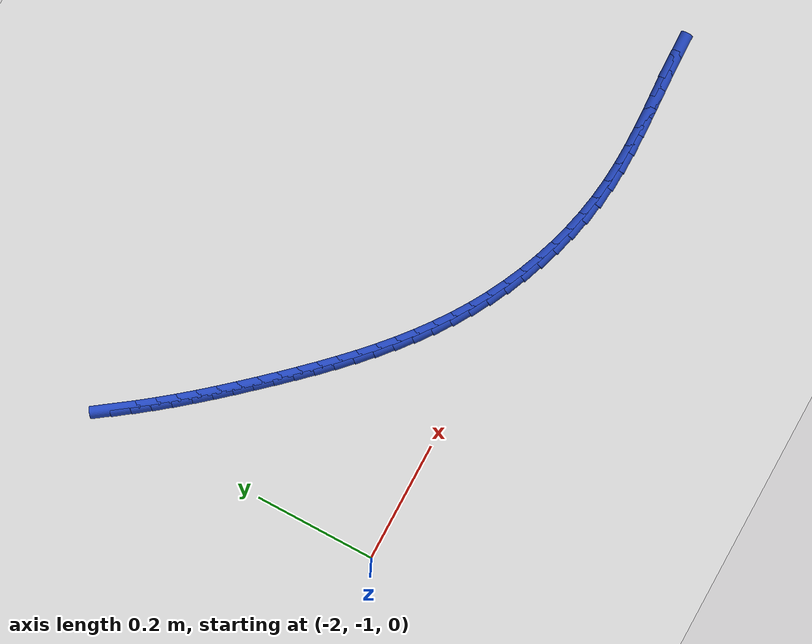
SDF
<sdf version="1.6">
 <world name="default">
  <model name="ground_plane">
   <static>1</static>
   <link name="link">
    <collision name="collision">
     <geometry><plane><normal>0 0 1</normal><size>100 100</size></plane></geometry>
     <surface><friction><ode><mu>100</mu><mu2>50</mu2></ode></friction></surface>
    </collision>
    <visual name="visual">
     <cast_shadows>0</cast_shadows>
     <geometry><plane><normal>0 0 1</normal><size>100 100</size></plane></geometry>
     <material>
      <script><uri>file://media/materials/scripts/gazebo.material</uri><name>Gazebo/WhiteGlow</name></script>
     </material>
    </visual>
   </link>
  </model>
  <model name="line">
   <link name="link_123">
    <pose>-1.9822790960547438 -0.53648132921445 0.01 0 1.57 -0.9532077410449262</pose>
    <collision name="collision">
     <geometry><cylinder><radius>0.01</radius><length>0.08</length></cylinder></geometry>
    </collision>
    <visual name="visual">
     <material>
      <script><name>Gazebo/Blue</name><uri>file://media/materials/scripts/gazebo.material</uri></script>
     </material>
     <geometry><cylinder><radius>0.01</radius><length>0.08</length></cylinder></geometry>
    </visual>
   </link>
   <link name="link_124">
    <pose>-1.963588134399126 -0.5627964413083407 0.01 0 1.57 -0.931108365339937</pose>
    <collision name="collision">
     <geometry><cylinder><radius>0.01</radius><length>0.08</length></cylinder></geometry>
    </collision>
    <visual name="visual">
     <material>
      <script><name>Gazebo/Blue</name><uri>file://media/materials/scripts/gazebo.material</uri></script>
     </material>
     <geometry><cylinder><radius>0.01</radius><length>0.08</length></cylinder></geometry>
    </visual>
   </link>
   <link name="link_125">
    <pose>-1.944331002395733 -0.5886776336544366 0.01 0 1.57 -0.9110941151925875</pose>
    <collision name="collision">
     <geometry><cylinder><radius>0.01</radius><length>0.08</length></cylinder></geometry>
    </collision>
    <visual name="visual">
     <material>
      <script><name>Gazebo/Blue</name><uri>file://media/materials/scripts/gazebo.material</uri></script>
     </material>
     <geometry><cylinder><radius>0.01</radius><length>0.08</length></cylinder></geometry>
    </visual>
   </link>
   <link name="link_126">
    <pose>-1.9245586226096025 -0.614169729379811 0.01 0 1.57 -0.8931900010010159</pose>
    <collision name="collision">
     <geometry><cylinder><radius>0.01</radius><length>0.08</length></cylinder></geometry>
    </collision>
    <visual name="visual">
     <material>
      <script><name>Gazebo/Blue</name><uri>file://media/materials/scripts/gazebo.material</uri></script>
     </material>
     <geometry><cylinder><radius>0.01</radius><length>0.08</length></cylinder></geometry>
    </visual>
   </link>
   <link name="link_127">
    <pose>-1.9043219176057715 -0.6393175516115395 0.01 0 1.57 -0.8774102426342933</pose>
    <collision name="collision">
     <geometry><cylinder><radius>0.01</radius><length>0.08</length></cylinder></geometry>
    </collision>
    <visual name="visual">
     <material>
      <script><name>Gazebo/Blue</name><uri>file://media/materials/scripts/gazebo.material</uri></script>
     </material>
     <geometry><cylinder><radius>0.01</radius><length>0.08</length></cylinder></geometry>
    </visual>
   </link>
   <link name="link_128">
    <pose>-1.8836718099492777 -0.6641659234766972 0.01 0 1.57 -0.8637606068564999</pose>
    <collision name="collision">
     <geometry><cylinder><radius>0.01</radius><length>0.08</length></cylinder></geometry>
    </collision>
    <visual name="visual">
     <material>
      <script><name>Gazebo/Blue</name><uri>file://media/materials/scripts/gazebo.material</uri></script>
     </material>
     <geometry><cylinder><radius>0.01</radius><length>0.08</length></cylinder></geometry>
    </visual>
   </link>
   <link name="link_129">
    <pose>-1.8626592222051594 -0.6887596681023594 0.01 0 1.57 -0.8522405366996783</pose>
    <collision name="collision">
     <geometry><cylinder><radius>0.01</radius><length>0.08</length></cylinder></geometry>
    </collision>
    <visual name="visual">
     <material>
      <script><name>Gazebo/Blue</name><uri>file://media/materials/scripts/gazebo.material</uri></script>
     </material>
     <geometry><cylinder><radius>0.01</radius><length>0.08</length></cylinder></geometry>
    </visual>
   </link>
   <link name="link_130">
    <pose>-1.8413350769384522 -0.7131436086156004 0.01 0 1.57 -0.8428262005221856</pose>
    <collision name="collision">
     <geometry><cylinder><radius>0.01</radius><length>0.08</length></cylinder></geometry>
    </collision>
    <visual name="visual">
     <material>
      <script><name>Gazebo/Blue</name><uri>file://media/materials/scripts/gazebo.material</uri></script>
     </material>
     <geometry><cylinder><radius>0.01</radius><length>0.08</length></cylinder></geometry>
    </visual>
   </link>
   <link name="link_131">
    <pose>-1.8197499140770634 -0.7373620797741635 0.01 0 1.57 -0.8336240853418438</pose>
    <collision name="collision">
     <geometry><cylinder><radius>0.01</radius><length>0.08</length></cylinder></geometry>
    </collision>
    <visual name="visual">
     <material>
      <script><name>Gazebo/Blue</name><uri>file://media/materials/scripts/gazebo.material</uri></script>
     </material>
     <geometry><cylinder><radius>0.01</radius><length>0.08</length></cylinder></geometry>
    </visual>
   </link>
   <link name="link_132">
    <pose>-1.7979159403887646 -0.7614104907656959 0.01 0 1.57 -0.8211518562409518</pose>
    <collision name="collision">
     <geometry><cylinder><radius>0.01</radius><length>0.08</length></cylinder></geometry>
    </collision>
    <visual name="visual">
     <material>
      <script><name>Gazebo/Blue</name><uri>file://media/materials/scripts/gazebo.material</uri></script>
     </material>
     <geometry><cylinder><radius>0.01</radius><length>0.08</length></cylinder></geometry>
    </visual>
   </link>
   <link name="link_133">
    <pose>-1.7757748546525967 -0.78519425967006 0.01 0 1.57 -0.8050085236706643</pose>
    <collision name="collision">
     <geometry><cylinder><radius>0.01</radius><length>0.08</length></cylinder></geometry>
    </collision>
    <visual name="visual">
     <material>
      <script><name>Gazebo/Blue</name><uri>file://media/materials/scripts/gazebo.material</uri></script>
     </material>
     <geometry><cylinder><radius>0.01</radius><length>0.08</length></cylinder></geometry>
    </visual>
   </link>
   <link name="link_134">
    <pose>-1.753260778893197 -0.8086091341661591 0.01 0 1.57 -0.7851537779239728</pose>
    <collision name="collision">
     <geometry><cylinder><radius>0.01</radius><length>0.08</length></cylinder></geometry>
    </collision>
    <visual name="visual">
     <material>
      <script><name>Gazebo/Blue</name><uri>file://media/materials/scripts/gazebo.material</uri></script>
     </material>
     <geometry><cylinder><radius>0.01</radius><length>0.08</length></cylinder></geometry>
    </visual>
   </link>
   <link name="link_135">
    <pose>-1.7303078351352053 -0.8315508619328971 0.01 0 1.57 -0.76154165025978</pose>
    <collision name="collision">
     <geometry><cylinder><radius>0.01</radius><length>0.08</length></cylinder></geometry>
    </collision>
    <visual name="visual">
     <material>
      <script><name>Gazebo/Blue</name><uri>file://media/materials/scripts/gazebo.material</uri></script>
     </material>
     <geometry><cylinder><radius>0.01</radius><length>0.08</length></cylinder></geometry>
    </visual>
   </link>
   <link name="link_136">
    <pose>-1.7068501454032585 -0.8539151906491772 0.01 0 1.57 -0.7341286392589328</pose>
    <collision name="collision">
     <geometry><cylinder><radius>0.01</radius><length>0.08</length></cylinder></geometry>
    </collision>
    <visual name="visual">
     <material>
      <script><name>Gazebo/Blue</name><uri>file://media/materials/scripts/gazebo.material</uri></script>
     </material>
     <geometry><cylinder><radius>0.01</radius><length>0.08</length></cylinder></geometry>
    </visual>
   </link>
   <link name="link_137">
    <pose>-1.682821831721996 -0.8755978679939027 0.01 0 1.57 -0.70288378220402</pose>
    <collision name="collision">
     <geometry><cylinder><radius>0.01</radius><length>0.08</length></cylinder></geometry>
    </collision>
    <visual name="visual">
     <material>
      <script><name>Gazebo/Blue</name><uri>file://media/materials/scripts/gazebo.material</uri></script>
     </material>
     <geometry><cylinder><radius>0.01</radius><length>0.08</length></cylinder></geometry>
    </visual>
   </link>
   <link name="link_138">
    <pose>-1.6581570161160553 -0.8964946416459776 0.01 0 1.57 -0.6678007227943621</pose>
    <collision name="collision">
     <geometry><cylinder><radius>0.01</radius><length>0.08</length></cylinder></geometry>
    </collision>
    <visual name="visual">
     <material>
      <script><name>Gazebo/Blue</name><uri>file://media/materials/scripts/gazebo.material</uri></script>
     </material>
     <geometry><cylinder><radius>0.01</radius><length>0.08</length></cylinder></geometry>
    </visual>
   </link>
   <link name="link_139">
    <pose>-1.6327898206100762 -0.9165012592843043 0.01 0 1.57 -0.628911565554183</pose>
    <collision name="collision">
     <geometry><cylinder><radius>0.01</radius><length>0.08</length></cylinder></geometry>
    </collision>
    <visual name="visual">
     <material>
      <script><name>Gazebo/Blue</name><uri>file://media/materials/scripts/gazebo.material</uri></script>
     </material>
     <geometry><cylinder><radius>0.01</radius><length>0.08</length></cylinder></geometry>
    </visual>
   </link>
   <link name="link_140">
    <pose>-1.606654367228696 -0.9355134685877864 0.01 0 1.57 -0.5863019065915528</pose>
    <collision name="collision">
     <geometry><cylinder><radius>0.01</radius><length>0.08</length></cylinder></geometry>
    </collision>
    <visual name="visual">
     <material>
      <script><name>Gazebo/Blue</name><uri>file://media/materials/scripts/gazebo.material</uri></script>
     </material>
     <geometry><cylinder><radius>0.01</radius><length>0.08</length></cylinder></geometry>
    </visual>
   </link>
   <link name="link_141">
    <pose>-1.5796847779965544 -0.9534270172353279 0.01 0 1.57 -0.5402432996426033</pose>
    <collision name="collision">
     <geometry><cylinder><radius>0.01</radius><length>0.08</length></cylinder></geometry>
    </collision>
    <visual name="visual">
     <material>
      <script><name>Gazebo/Blue</name><uri>file://media/materials/scripts/gazebo.material</uri></script>
     </material>
     <geometry><cylinder><radius>0.01</radius><length>0.08</length></cylinder></geometry>
    </visual>
   </link>
   <link name="link_142">
    <pose>-1.5518209003895933 -0.9701386674047504 0.01 0 1.57 -0.4926747962795598</pose>
    <collision name="collision">
     <geometry><cylinder><radius>0.01</radius><length>0.08</length></cylinder></geometry>
    </collision>
    <visual name="visual">
     <material>
      <script><name>Gazebo/Blue</name><uri>file://media/materials/scripts/gazebo.material</uri></script>
     </material>
     <geometry><cylinder><radius>0.01</radius><length>0.08</length></cylinder></geometry>
    </visual>
   </link>
   <link name="link_143">
    <pose>-1.5230922024019606 -0.9855610612305821 0.01 0 1.57 -0.44480871104406705</pose>
    <collision name="collision">
     <geometry><cylinder><radius>0.01</radius><length>0.08</length></cylinder></geometry>
    </collision>
    <visual name="visual">
     <material>
      <script><name>Gazebo/Blue</name><uri>file://media/materials/scripts/gazebo.material</uri></script>
     </material>
     <geometry><cylinder><radius>0.01</radius><length>0.08</length></cylinder></geometry>
    </visual>
   </link>
   <link name="link_144">
    <pose>-1.493599220242548 -0.999619433501308 0.01 0 1.57 -0.39635666066986397</pose>
    <collision name="collision">
     <geometry><cylinder><radius>0.01</radius><length>0.08</length></cylinder></geometry>
    </collision>
    <visual name="visual">
     <material>
      <script><name>Gazebo/Blue</name><uri>file://media/materials/scripts/gazebo.material</uri></script>
     </material>
     <geometry><cylinder><radius>0.01</radius><length>0.08</length></cylinder></geometry>
    </visual>
   </link>
   <link name="link_145">
    <pose>-1.463444442423597 -1.0122393649361598 0.01 0 1.57 -0.3469959985176312</pose>
    <collision name="collision">
     <geometry><cylinder><radius>0.01</radius><length>0.08</length></cylinder></geometry>
    </collision>
    <visual name="visual">
     <material>
      <script><name>Gazebo/Blue</name><uri>file://media/materials/scripts/gazebo.material</uri></script>
     </material>
     <geometry><cylinder><radius>0.01</radius><length>0.08</length></cylinder></geometry>
    </visual>
   </link>
   <link name="link_146">
    <pose>-1.4327303574573498 -1.0233464362543674 0.01 0 1.57 -0.2964093394911552</pose>
    <collision name="collision">
     <geometry><cylinder><radius>0.01</radius><length>0.08</length></cylinder></geometry>
    </collision>
    <visual name="visual">
     <material>
      <script><name>Gazebo/Blue</name><uri>file://media/materials/scripts/gazebo.material</uri></script>
     </material>
     <geometry><cylinder><radius>0.01</radius><length>0.08</length></cylinder></geometry>
    </visual>
   </link>
   <link name="link_147">
    <pose>-1.4015594538560476 -1.0328662281751617 0.01 0 1.57 -0.24428546058516512</pose>
    <collision name="collision">
     <geometry><cylinder><radius>0.01</radius><length>0.08</length></cylinder></geometry>
    </collision>
    <visual name="visual">
     <material>
      <script><name>Gazebo/Blue</name><uri>file://media/materials/scripts/gazebo.material</uri></script>
     </material>
     <geometry><cylinder><radius>0.01</radius><length>0.08</length></cylinder></geometry>
    </visual>
   </link>
   <link name="link_148">
    <pose>-1.3700342201319324 -1.0407243214177746 0.01 0 1.57 -0.19032206017987388</pose>
    <collision name="collision">
     <geometry><cylinder><radius>0.01</radius><length>0.08</length></cylinder></geometry>
    </collision>
    <visual name="visual">
     <material>
      <script><name>Gazebo/Blue</name><uri>file://media/materials/scripts/gazebo.material</uri></script>
     </material>
     <geometry><cylinder><radius>0.01</radius><length>0.08</length></cylinder></geometry>
    </visual>
   </link>
   <link name="link_149">
    <pose>-1.338257144797245 -1.046846296701436 0.01 0 1.57 -0.1342308832272214</pose>
    <collision name="collision">
     <geometry><cylinder><radius>0.01</radius><length>0.08</length></cylinder></geometry>
    </collision>
    <visual name="visual">
     <material>
      <script><name>Gazebo/Blue</name><uri>file://media/materials/scripts/gazebo.material</uri></script>
     </material>
     <geometry><cylinder><radius>0.01</radius><length>0.08</length></cylinder></geometry>
    </visual>
   </link>
   <link name="link_150">
    <pose>-1.3063307163144418 -1.051157734950213 0.01 0 1.57 -0.07806093634948591</pose>
    <collision name="collision">
     <geometry><cylinder><radius>0.01</radius><length>0.08</length></cylinder></geometry>
    </collision>
    <visual name="visual">
     <material>
      <script><name>Gazebo/Blue</name><uri>file://media/materials/scripts/gazebo.material</uri></script>
     </material>
     <geometry><cylinder><radius>0.01</radius><length>0.08</length></cylinder></geometry>
    </visual>
   </link>
   <link name="link_151">
    <pose>-1.274338973544772 -1.0536601251920694 0.01 0 1.57 -0.030756806655642507</pose>
    <collision name="collision">
     <geometry><cylinder><radius>0.01</radius><length>0.08</length></cylinder></geometry>
    </collision>
    <visual name="visual">
     <material>
      <script><name>Gazebo/Blue</name><uri>file://media/materials/scripts/gazebo.material</uri></script>
     </material>
     <geometry><cylinder><radius>0.01</radius><length>0.08</length></cylinder></geometry>
    </visual>
   </link>
   <link name="link_152">
    <pose>-1.2422952167612091 -1.0546459997164963 0.01 0 1.57 0.005245090932125747</pose>
    <collision name="collision">
     <geometry><cylinder><radius>0.01</radius><length>0.08</length></cylinder></geometry>
    </collision>
    <visual name="visual">
     <material>
      <script><name>Gazebo/Blue</name><uri>file://media/materials/scripts/gazebo.material</uri></script>
     </material>
     <geometry><cylinder><radius>0.01</radius><length>0.08</length></cylinder></geometry>
    </visual>
   </link>
   <link name="link_153">
    <pose>-1.2101957950814395 -1.054477633786944 0.01 0 1.57 0.02985334281060876</pose>
    <collision name="collision">
     <geometry><cylinder><radius>0.01</radius><length>0.08</length></cylinder></geometry>
    </collision>
    <visual name="visual">
     <material>
      <script><name>Gazebo/Blue</name><uri>file://media/materials/scripts/gazebo.material</uri></script>
     </material>
     <geometry><cylinder><radius>0.01</radius><length>0.08</length></cylinder></geometry>
    </visual>
   </link>
   <link name="link_154">
    <pose>-1.178037057623151 -1.0535173026668616 0.01 0 1.57 0.04311254700953442</pose>
    <collision name="collision">
     <geometry><cylinder><radius>0.01</radius><length>0.08</length></cylinder></geometry>
    </collision>
    <visual name="visual">
     <material>
      <script><name>Gazebo/Blue</name><uri>file://media/materials/scripts/gazebo.material</uri></script>
     </material>
     <geometry><cylinder><radius>0.01</radius><length>0.08</length></cylinder></geometry>
    </visual>
   </link>
   <link name="link_155">
    <pose>-1.1458153535040319 -1.0521272816196998 0.01 0 1.57 0.045107550486994705</pose>
    <collision name="collision">
     <geometry><cylinder><radius>0.01</radius><length>0.08</length></cylinder></geometry>
    </collision>
    <visual name="visual">
     <material>
      <script><name>Gazebo/Blue</name><uri>file://media/materials/scripts/gazebo.material</uri></script>
     </material>
     <geometry><cylinder><radius>0.01</radius><length>0.08</length></cylinder></geometry>
    </visual>
   </link>
   <link name="link_156">
    <pose>-1.1135270318417692 -1.050669845908908 0.01 0 1.57 0.035912419949860684</pose>
    <collision name="collision">
     <geometry><cylinder><radius>0.01</radius><length>0.08</length></cylinder></geometry>
    </collision>
    <visual name="visual">
     <material>
      <script><name>Gazebo/Blue</name><uri>file://media/materials/scripts/gazebo.material</uri></script>
     </material>
     <geometry><cylinder><radius>0.01</radius><length>0.08</length></cylinder></geometry>
    </visual>
   </link>
   <link name="link_157">
    <pose>-1.0811684417540508 -1.049507270797936 0.01 0 1.57 0.015583078341135733</pose>
    <collision name="collision">
     <geometry><cylinder><radius>0.01</radius><length>0.08</length></cylinder></geometry>
    </collision>
    <visual name="visual">
     <material>
      <script><name>Gazebo/Blue</name><uri>file://media/materials/scripts/gazebo.material</uri></script>
     </material>
     <geometry><cylinder><radius>0.01</radius><length>0.08</length></cylinder></geometry>
    </visual>
   </link>
  </model>
 </world>
</sdf>
